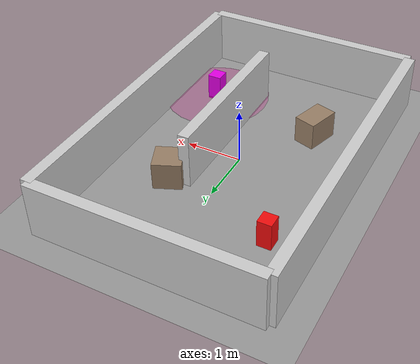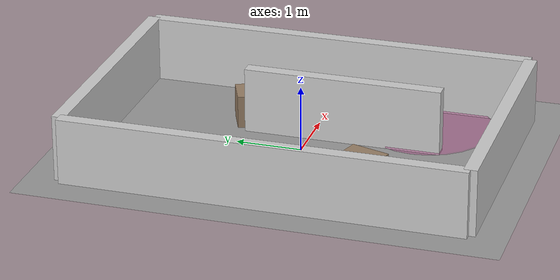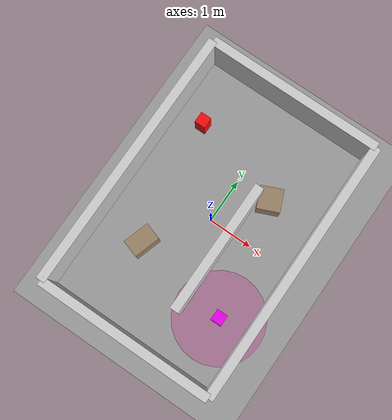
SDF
<?xml version="1.0"?>
<sdf version="1.9">
  <world name="contaminated_zone">

    <!-- system plugins -->
    <plugin filename="gz-sim-physics-system"
            name="gz::sim::systems::Physics"/>
    <plugin filename="gz-sim-scene-broadcaster-system"
            name="gz::sim::systems::SceneBroadcaster"/>
    <plugin filename="gz-sim-user-commands-system"
            name="gz::sim::systems::UserCommands"/>
    <plugin filename="gz-sim-sensors-system"
            name="gz::sim::systems::Sensors">
      <render_engine>ogre2</render_engine>
    </plugin>
    <plugin filename="gz-sim-imu-system"
            name="gz::sim::systems::Imu"/>

    <!-- 4 ms step (250 Hz) instead of 1 ms: ~4x less physics CPU, plenty
         accurate for this demo and much smoother inside a VM. -->
    <physics name="4ms" type="ignored">
      <max_step_size>0.004</max_step_size>
      <real_time_factor>1.0</real_time_factor>
    </physics>
    <gravity>0 0 -9.81</gravity>

    <!-- lighting -->
    <light type="directional" name="sun">
      <cast_shadows>true</cast_shadows>
      <pose>0 0 10 0 0 0</pose>
      <diffuse>0.9 0.9 0.9 1</diffuse>
      <specular>0.2 0.2 0.2 1</specular>
      <direction>-0.5 0.3 -1</direction>
    </light>

    <!-- ground plane -->
    <model name="ground_plane">
      <static>true</static>
      <link name="link">
        <collision name="collision">
          <geometry><plane><normal>0 0 1</normal><size>50 50</size></plane></geometry>
          <surface><friction><ode><mu>1.0</mu><mu2>1.0</mu2></ode></friction></surface>
        </collision>
        <visual name="visual">
          <geometry><plane><normal>0 0 1</normal><size>50 50</size></plane></geometry>
          <material>
            <ambient>0.4 0.4 0.4 1</ambient>
            <diffuse>0.6 0.6 0.6 1</diffuse>
          </material>
        </visual>
      </link>
    </model>

    <!-- ============ Structure: collapsed / contaminated corridors ======= -->
    <model name="wall_1">
      <static>true</static><pose>2 0 0.5 0 0 0</pose>
      <link name="link">
        <collision name="collision"><geometry><box><size>0.2 6 1</size></box></geometry></collision>
        <visual name="visual"><geometry><box><size>0.2 6 1</size></box></geometry>
          <material><ambient>0.7 0.7 0.7 1</ambient><diffuse>0.8 0.8 0.8 1</diffuse></material></visual>
      </link>
    </model>
    <model name="wall_2">
      <static>true</static><pose>-2 0 0.5 0 0 0</pose>
      <link name="link">
        <collision name="collision"><geometry><box><size>0.2 6 1</size></box></geometry></collision>
        <visual name="visual"><geometry><box><size>0.2 6 1</size></box></geometry>
          <material><ambient>0.7 0.7 0.7 1</ambient><diffuse>0.8 0.8 0.8 1</diffuse></material></visual>
      </link>
    </model>
    <model name="wall_3">
      <static>true</static><pose>0 3 0.5 0 0 1.5708</pose>
      <link name="link">
        <collision name="collision"><geometry><box><size>0.2 4 1</size></box></geometry></collision>
        <visual name="visual"><geometry><box><size>0.2 4 1</size></box></geometry>
          <material><ambient>0.7 0.7 0.7 1</ambient><diffuse>0.8 0.8 0.8 1</diffuse></material></visual>
      </link>
    </model>
    <model name="wall_4">
      <static>true</static><pose>0 -3 0.5 0 0 1.5708</pose>
      <link name="link">
        <collision name="collision"><geometry><box><size>0.2 4 1</size></box></geometry></collision>
        <visual name="visual"><geometry><box><size>0.2 4 1</size></box></geometry>
          <material><ambient>0.7 0.7 0.7 1</ambient><diffuse>0.8 0.8 0.8 1</diffuse></material></visual>
      </link>
    </model>
    <model name="wall_5">
      <static>true</static><pose>0.5 -0.5 0.5 0 0 0</pose>
      <link name="link">
        <collision name="collision"><geometry><box><size>0.2 3 1</size></box></geometry></collision>
        <visual name="visual"><geometry><box><size>0.2 3 1</size></box></geometry>
          <material><ambient>0.7 0.7 0.7 1</ambient><diffuse>0.8 0.8 0.8 1</diffuse></material></visual>
      </link>
    </model>

    <!-- rubble the robot must route around -->
    <model name="rubble_1">
      <static>true</static><pose>0.8 1 0.25 0 0 0.4</pose>
      <link name="link">
        <collision name="collision"><geometry><box><size>0.5 0.5 0.5</size></box></geometry></collision>
        <visual name="visual"><geometry><box><size>0.5 0.5 0.5</size></box></geometry>
          <material><ambient>0.5 0.4 0.3 1</ambient><diffuse>0.6 0.5 0.4 1</diffuse></material></visual>
      </link>
    </model>
    <model name="rubble_2">
      <static>true</static><pose>-0.9 -1.2 0.25 0 0 -0.3</pose>
      <link name="link">
        <collision name="collision"><geometry><box><size>0.4 0.6 0.5</size></box></geometry></collision>
        <visual name="visual"><geometry><box><size>0.4 0.6 0.5</size></box></geometry>
          <material><ambient>0.5 0.4 0.3 1</ambient><diffuse>0.6 0.5 0.4 1</diffuse></material></visual>
      </link>
    </model>

    <!-- ================= EVENT MARKERS (for camera CV) ================== -->
    <!-- Radiation source: MAGENTA post -> vision detector "radiation" -->
    <model name="radiation_source">
      <static>true</static><pose>1.3 -1.6 0.25 0 0 0</pose>
      <link name="link">
        <collision name="collision"><geometry><box><size>0.25 0.25 0.5</size></box></geometry></collision>
        <visual name="visual"><geometry><box><size>0.25 0.25 0.5</size></box></geometry>
          <material>
            <ambient>0.6 0.0 0.6 1</ambient><diffuse>0.9 0.0 0.9 1</diffuse>
            <emissive>0.3 0.0 0.3 1</emissive>
          </material></visual>
      </link>
    </model>
    <model name="radiation_hotzone">
      <static>true</static><pose>1.3 -1.6 0.02 0 0 0</pose>
      <link name="link">
        <visual name="visual"><geometry><cylinder><radius>1.0</radius><length>0.02</length></cylinder></geometry>
          <material><ambient>0.8 0.0 0.5 0.25</ambient><diffuse>0.8 0.0 0.5 0.25</diffuse></material></visual>
      </link>
    </model>

    <!-- Fire / heat hazard: RED post -> vision detector "fire" -->
    <model name="fire_hazard">
      <static>true</static><pose>-1.3 1.6 0.25 0 0 0</pose>
      <link name="link">
        <collision name="collision"><geometry><box><size>0.25 0.25 0.5</size></box></geometry></collision>
        <visual name="visual"><geometry><box><size>0.25 0.25 0.5</size></box></geometry>
          <material>
            <ambient>0.6 0.0 0.0 1</ambient><diffuse>0.95 0.05 0.05 1</diffuse>
            <emissive>0.4 0.0 0.0 1</emissive>
          </material></visual>
      </link>
    </model>

  </world>
</sdf>
